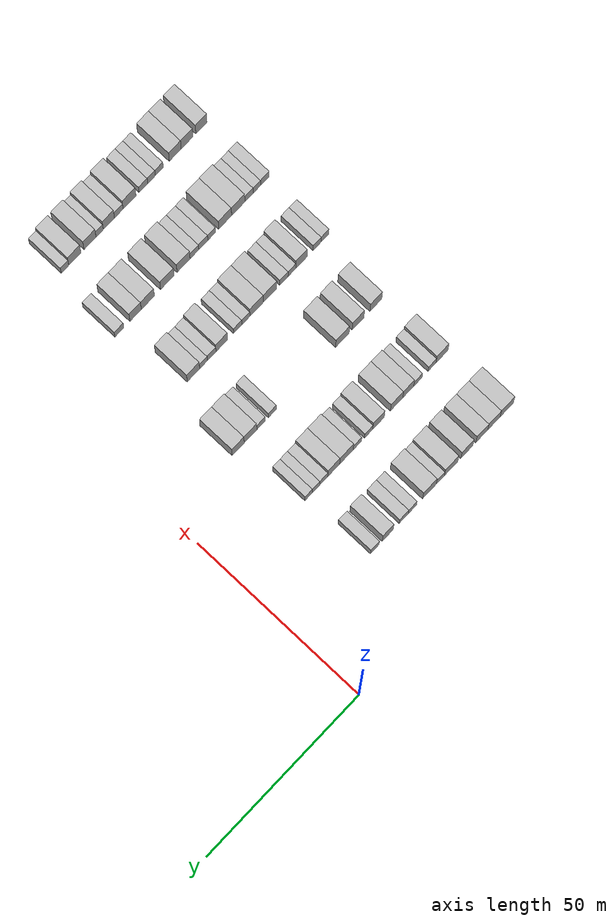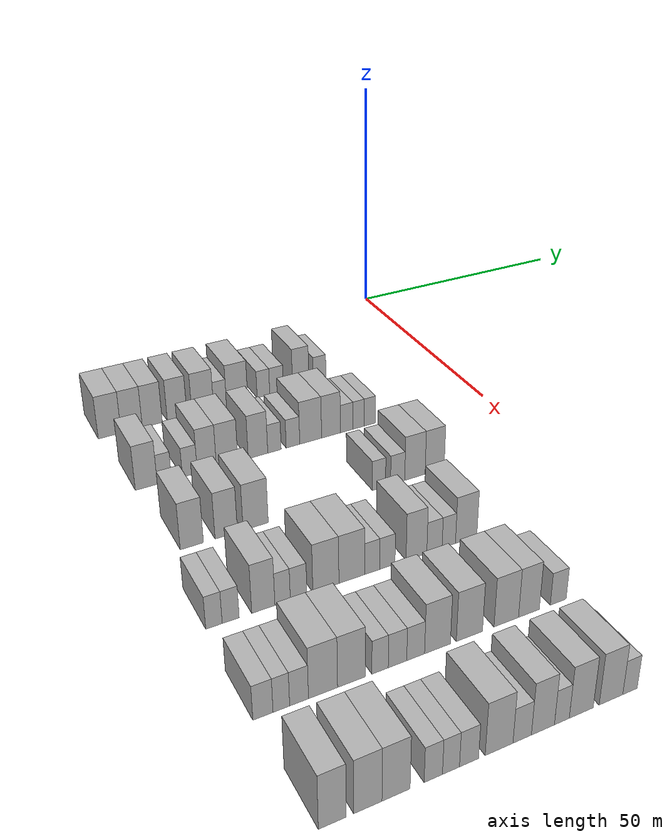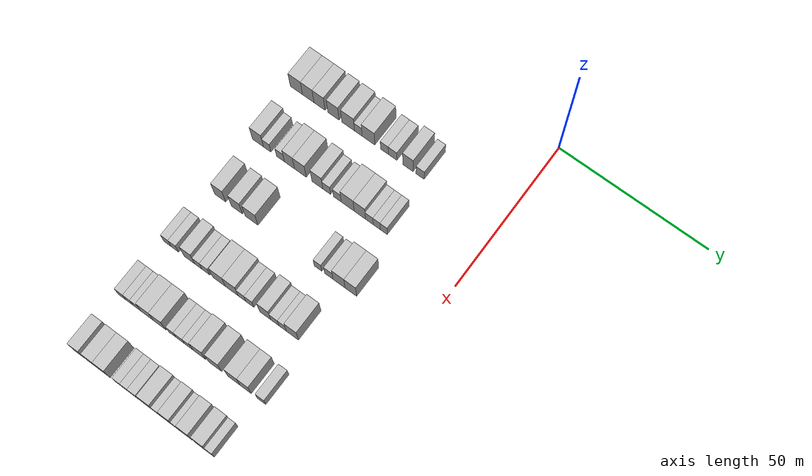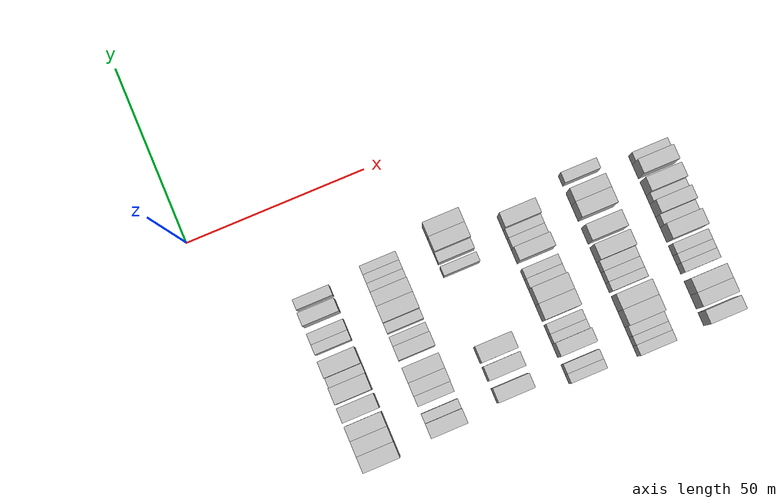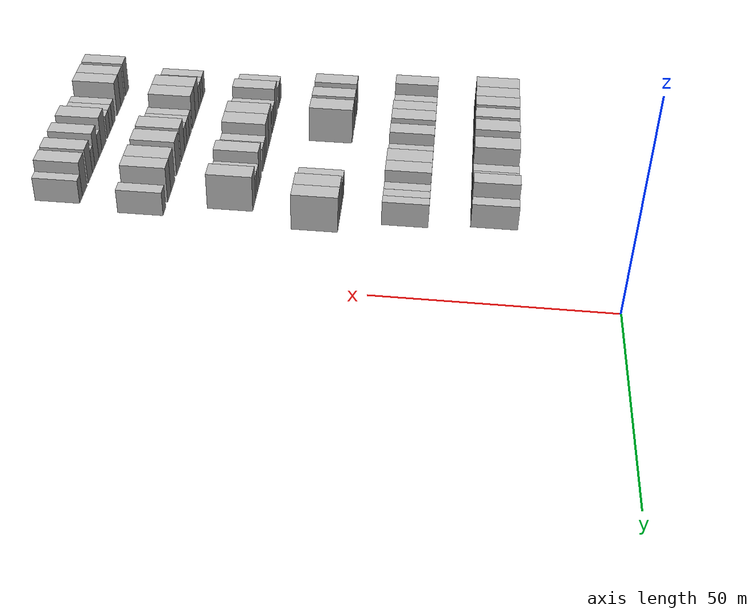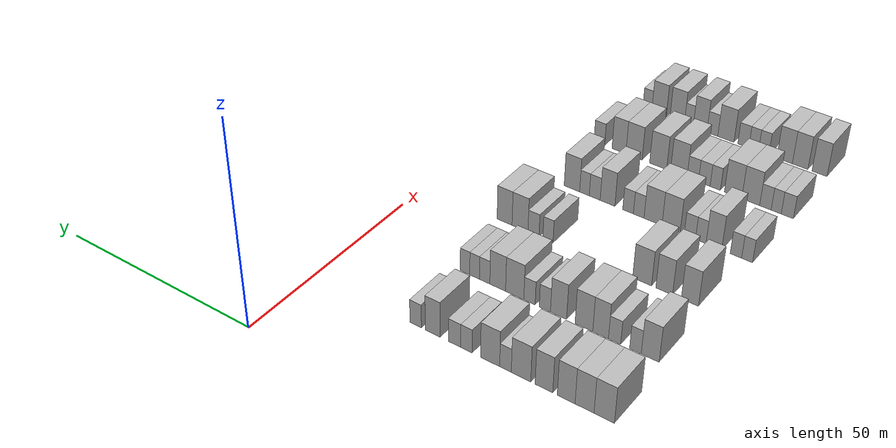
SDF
<sdf version="1.6">
 <world name="default">
  <model name="building_70">
   <static>1</static>
   <pose>25.0000 -69.9888 0 0.000000 0.000000 0.000000</pose>
   <link name="link">
    <pose>0 0 4.50 0 0 0</pose>
    <collision name="collision"><geometry><box><size>10.0000 4.3776 9.0000</size></box></geometry></collision>
    <visual name="visual">
     <cast_shadows>0</cast_shadows>
     <geometry><box><size>10.0000 4.3776 9.0000</size></box></geometry>
     <material>
      <script>
       <uri>model://HANNAS_wall/materials/scripts</uri>
       <uri>model://HANNAS_wall/materials/textures</uri>
       <name>vrc/HANNAS_wall</name>
      </script>
     </material>
    </visual>
   </link>
  </model>
  <model name="building_71">
   <static>1</static>
   <pose>25.0000 -65.7363 0 0.000000 0.000000 0.000000</pose>
   <link name="link">
    <pose>0 0 4.50 0 0 0</pose>
    <collision name="collision"><geometry><box><size>10.0000 4.1273 9.0000</size></box></geometry></collision>
    <visual name="visual">
     <cast_shadows>0</cast_shadows>
     <geometry><box><size>10.0000 4.1273 9.0000</size></box></geometry>
     <material>
      <script>
       <uri>model://HANNAS_wall/materials/scripts</uri>
       <uri>model://HANNAS_wall/materials/textures</uri>
       <name>vrc/HANNAS_wall</name>
      </script>
     </material>
    </visual>
   </link>
  </model>
  <model name="building_72">
   <static>1</static>
   <pose>25.0000 -61.7075 0 0.000000 0.000000 0.000000</pose>
   <link name="link">
    <pose>0 0 4.50 0 0 0</pose>
    <collision name="collision"><geometry><box><size>10.0000 3.9303 9.0000</size></box></geometry></collision>
    <visual name="visual">
     <cast_shadows>0</cast_shadows>
     <geometry><box><size>10.0000 3.9303 9.0000</size></box></geometry>
     <material>
      <script>
       <uri>model://HANNAS_wall/materials/scripts</uri>
       <uri>model://HANNAS_wall/materials/textures</uri>
       <name>vrc/HANNAS_wall</name>
      </script>
     </material>
    </visual>
   </link>
  </model>
  <model name="building_73">
   <static>1</static>
   <pose>25.0000 -56.7622 0 0.000000 0.000000 0.000000</pose>
   <link name="link">
    <pose>0 0 4.50 0 0 0</pose>
    <collision name="collision"><geometry><box><size>10.0000 3.9604 9.0000</size></box></geometry></collision>
    <visual name="visual">
     <cast_shadows>0</cast_shadows>
     <geometry><box><size>10.0000 3.9604 9.0000</size></box></geometry>
     <material>
      <script>
       <uri>model://HANNAS_wall/materials/scripts</uri>
       <uri>model://HANNAS_wall/materials/textures</uri>
       <name>vrc/HANNAS_wall</name>
      </script>
     </material>
    </visual>
   </link>
  </model>
  <model name="building_74">
   <static>1</static>
   <pose>25.0000 -51.5574 0 0.000000 0.000000 0.000000</pose>
   <link name="link">
    <pose>0 0 4.50 0 0 0</pose>
    <collision name="collision"><geometry><box><size>10.0000 4.4492 9.0000</size></box></geometry></collision>
    <visual name="visual">
     <cast_shadows>0</cast_shadows>
     <geometry><box><size>10.0000 4.4492 9.0000</size></box></geometry>
     <material>
      <script>
       <uri>model://HANNAS_wall/materials/scripts</uri>
       <uri>model://HANNAS_wall/materials/textures</uri>
       <name>vrc/HANNAS_wall</name>
      </script>
     </material>
    </visual>
   </link>
  </model>
  <model name="building_75">
   <static>1</static>
   <pose>25.0000 -47.9876 0 0.000000 0.000000 0.000000</pose>
   <link name="link">
    <pose>0 0 3.00 0 0 0</pose>
    <collision name="collision"><geometry><box><size>10.0000 2.6904 6.0000</size></box></geometry></collision>
    <visual name="visual">
     <cast_shadows>0</cast_shadows>
     <geometry><box><size>10.0000 2.6904 6.0000</size></box></geometry>
     <material>
      <script>
       <uri>model://HANNAS_wall/materials/scripts</uri>
       <uri>model://HANNAS_wall/materials/textures</uri>
       <name>vrc/HANNAS_wall</name>
      </script>
     </material>
    </visual>
   </link>
  </model>
  <model name="building_76">
   <static>1</static>
   <pose>25.0000 -44.4058 0 0.000000 0.000000 0.000000</pose>
   <link name="link">
    <pose>0 0 4.50 0 0 0</pose>
    <collision name="collision"><geometry><box><size>10.0000 4.4731 9.0000</size></box></geometry></collision>
    <visual name="visual">
     <cast_shadows>0</cast_shadows>
     <geometry><box><size>10.0000 4.4731 9.0000</size></box></geometry>
     <material>
      <script>
       <uri>model://HANNAS_wall/materials/scripts</uri>
       <uri>model://HANNAS_wall/materials/textures</uri>
       <name>vrc/HANNAS_wall</name>
      </script>
     </material>
    </visual>
   </link>
  </model>
  <model name="building_77">
   <static>1</static>
   <pose>25.0000 -38.8100 0 0.000000 0.000000 0.000000</pose>
   <link name="link">
    <pose>0 0 3.00 0 0 0</pose>
    <collision name="collision"><geometry><box><size>10.0000 2.7185 6.0000</size></box></geometry></collision>
    <visual name="visual">
     <cast_shadows>0</cast_shadows>
     <geometry><box><size>10.0000 2.7185 6.0000</size></box></geometry>
     <material>
      <script>
       <uri>model://HANNAS_wall/materials/scripts</uri>
       <uri>model://HANNAS_wall/materials/textures</uri>
       <name>vrc/HANNAS_wall</name>
      </script>
     </material>
    </visual>
   </link>
  </model>
  <model name="building_78">
   <static>1</static>
   <pose>25.0000 -35.9516 0 0.000000 0.000000 0.000000</pose>
   <link name="link">
    <pose>0 0 3.00 0 0 0</pose>
    <collision name="collision"><geometry><box><size>10.0000 2.9984 6.0000</size></box></geometry></collision>
    <visual name="visual">
     <cast_shadows>0</cast_shadows>
     <geometry><box><size>10.0000 2.9984 6.0000</size></box></geometry>
     <material>
      <script>
       <uri>model://HANNAS_wall/materials/scripts</uri>
       <uri>model://HANNAS_wall/materials/textures</uri>
       <name>vrc/HANNAS_wall</name>
      </script>
     </material>
    </visual>
   </link>
  </model>
  <model name="building_79">
   <static>1</static>
   <pose>25.0000 -30.6414 0 0.000000 0.000000 0.000000</pose>
   <link name="link">
    <pose>0 0 4.50 0 0 0</pose>
    <collision name="collision"><geometry><box><size>10.0000 3.6219 9.0000</size></box></geometry></collision>
    <visual name="visual">
     <cast_shadows>0</cast_shadows>
     <geometry><box><size>10.0000 3.6219 9.0000</size></box></geometry>
     <material>
      <script>
       <uri>model://HANNAS_wall/materials/scripts</uri>
       <uri>model://HANNAS_wall/materials/textures</uri>
       <name>vrc/HANNAS_wall</name>
      </script>
     </material>
    </visual>
   </link>
  </model>
  <model name="building_80">
   <static>1</static>
   <pose>25.0000 -26.4123 0 0.000000 0.000000 0.000000</pose>
   <link name="link">
    <pose>0 0 3.00 0 0 0</pose>
    <collision name="collision"><geometry><box><size>10.0000 2.8364 6.0000</size></box></geometry></collision>
    <visual name="visual">
     <cast_shadows>0</cast_shadows>
     <geometry><box><size>10.0000 2.8364 6.0000</size></box></geometry>
     <material>
      <script>
       <uri>model://HANNAS_wall/materials/scripts</uri>
       <uri>model://HANNAS_wall/materials/textures</uri>
       <name>vrc/HANNAS_wall</name>
      </script>
     </material>
    </visual>
   </link>
  </model>
  <model name="building_248">
   <static>1</static>
   <pose>44.0000 -68.8978 0 0.000000 0.000000 0.000000</pose>
   <link name="link">
    <pose>0 0 4.50 0 0 0</pose>
    <collision name="collision"><geometry><box><size>10.0000 3.9660 9.0000</size></box></geometry></collision>
    <visual name="visual">
     <cast_shadows>0</cast_shadows>
     <geometry><box><size>10.0000 3.9660 9.0000</size></box></geometry>
     <material>
      <script>
       <uri>model://HANNAS_wall/materials/scripts</uri>
       <uri>model://HANNAS_wall/materials/textures</uri>
       <name>vrc/HANNAS_wall</name>
      </script>
     </material>
    </visual>
   </link>
  </model>
  <model name="building_249">
   <static>1</static>
   <pose>44.0000 -65.6132 0 0.000000 0.000000 0.000000</pose>
   <link name="link">
    <pose>0 0 3.00 0 0 0</pose>
    <collision name="collision"><geometry><box><size>10.0000 2.6032 6.0000</size></box></geometry></collision>
    <visual name="visual">
     <cast_shadows>0</cast_shadows>
     <geometry><box><size>10.0000 2.6032 6.0000</size></box></geometry>
     <material>
      <script>
       <uri>model://HANNAS_wall/materials/scripts</uri>
       <uri>model://HANNAS_wall/materials/textures</uri>
       <name>vrc/HANNAS_wall</name>
      </script>
     </material>
    </visual>
   </link>
  </model>
  <model name="building_250">
   <static>1</static>
   <pose>44.0000 -60.9250 0 0.000000 0.000000 0.000000</pose>
   <link name="link">
    <pose>0 0 3.00 0 0 0</pose>
    <collision name="collision"><geometry><box><size>10.0000 2.7731 6.0000</size></box></geometry></collision>
    <visual name="visual">
     <cast_shadows>0</cast_shadows>
     <geometry><box><size>10.0000 2.7731 6.0000</size></box></geometry>
     <material>
      <script>
       <uri>model://HANNAS_wall/materials/scripts</uri>
       <uri>model://HANNAS_wall/materials/textures</uri>
       <name>vrc/HANNAS_wall</name>
      </script>
     </material>
    </visual>
   </link>
  </model>
  <model name="building_251">
   <static>1</static>
   <pose>44.0000 -57.7348 0 0.000000 0.000000 0.000000</pose>
   <link name="link">
    <pose>0 0 4.50 0 0 0</pose>
    <collision name="collision"><geometry><box><size>10.0000 3.6072 9.0000</size></box></geometry></collision>
    <visual name="visual">
     <cast_shadows>0</cast_shadows>
     <geometry><box><size>10.0000 3.6072 9.0000</size></box></geometry>
     <material>
      <script>
       <uri>model://HANNAS_wall/materials/scripts</uri>
       <uri>model://HANNAS_wall/materials/textures</uri>
       <name>vrc/HANNAS_wall</name>
      </script>
     </material>
    </visual>
   </link>
  </model>
  <model name="building_252">
   <static>1</static>
   <pose>44.0000 -53.8729 0 0.000000 0.000000 0.000000</pose>
   <link name="link">
    <pose>0 0 4.50 0 0 0</pose>
    <collision name="collision"><geometry><box><size>10.0000 4.1167 9.0000</size></box></geometry></collision>
    <visual name="visual">
     <cast_shadows>0</cast_shadows>
     <geometry><box><size>10.0000 4.1167 9.0000</size></box></geometry>
     <material>
      <script>
       <uri>model://HANNAS_wall/materials/scripts</uri>
       <uri>model://HANNAS_wall/materials/textures</uri>
       <name>vrc/HANNAS_wall</name>
      </script>
     </material>
    </visual>
   </link>
  </model>
  <model name="building_253">
   <static>1</static>
   <pose>44.0000 -47.9007 0 0.000000 0.000000 0.000000</pose>
   <link name="link">
    <pose>0 0 4.50 0 0 0</pose>
    <collision name="collision"><geometry><box><size>10.0000 3.8277 9.0000</size></box></geometry></collision>
    <visual name="visual">
     <cast_shadows>0</cast_shadows>
     <geometry><box><size>10.0000 3.8277 9.0000</size></box></geometry>
     <material>
      <script>
       <uri>model://HANNAS_wall/materials/scripts</uri>
       <uri>model://HANNAS_wall/materials/textures</uri>
       <name>vrc/HANNAS_wall</name>
      </script>
     </material>
    </visual>
   </link>
  </model>
  <model name="building_254">
   <static>1</static>
   <pose>44.0000 -44.6475 0 0.000000 0.000000 0.000000</pose>
   <link name="link">
    <pose>0 0 3.00 0 0 0</pose>
    <collision name="collision"><geometry><box><size>10.0000 2.6787 6.0000</size></box></geometry></collision>
    <visual name="visual">
     <cast_shadows>0</cast_shadows>
     <geometry><box><size>10.0000 2.6787 6.0000</size></box></geometry>
     <material>
      <script>
       <uri>model://HANNAS_wall/materials/scripts</uri>
       <uri>model://HANNAS_wall/materials/textures</uri>
       <name>vrc/HANNAS_wall</name>
      </script>
     </material>
    </visual>
   </link>
  </model>
  <model name="building_255">
   <static>1</static>
   <pose>44.0000 -40.9359 0 0.000000 0.000000 0.000000</pose>
   <link name="link">
    <pose>0 0 3.00 0 0 0</pose>
    <collision name="collision"><geometry><box><size>10.0000 2.7445 6.0000</size></box></geometry></collision>
    <visual name="visual">
     <cast_shadows>0</cast_shadows>
     <geometry><box><size>10.0000 2.7445 6.0000</size></box></geometry>
     <material>
      <script>
       <uri>model://HANNAS_wall/materials/scripts</uri>
       <uri>model://HANNAS_wall/materials/textures</uri>
       <name>vrc/HANNAS_wall</name>
      </script>
     </material>
    </visual>
   </link>
  </model>
  <model name="building_256">
   <static>1</static>
   <pose>44.0000 -37.3210 0 0.000000 0.000000 0.000000</pose>
   <link name="link">
    <pose>0 0 4.50 0 0 0</pose>
    <collision name="collision"><geometry><box><size>10.0000 4.4855 9.0000</size></box></geometry></collision>
    <visual name="visual">
     <cast_shadows>0</cast_shadows>
     <geometry><box><size>10.0000 4.4855 9.0000</size></box></geometry>
     <material>
      <script>
       <uri>model://HANNAS_wall/materials/scripts</uri>
       <uri>model://HANNAS_wall/materials/textures</uri>
       <name>vrc/HANNAS_wall</name>
      </script>
     </material>
    </visual>
   </link>
  </model>
  <model name="building_257">
   <static>1</static>
   <pose>44.0000 -33.1136 0 0.000000 0.000000 0.000000</pose>
   <link name="link">
    <pose>0 0 4.50 0 0 0</pose>
    <collision name="collision"><geometry><box><size>10.0000 3.9292 9.0000</size></box></geometry></collision>
    <visual name="visual">
     <cast_shadows>0</cast_shadows>
     <geometry><box><size>10.0000 3.9292 9.0000</size></box></geometry>
     <material>
      <script>
       <uri>model://HANNAS_wall/materials/scripts</uri>
       <uri>model://HANNAS_wall/materials/textures</uri>
       <name>vrc/HANNAS_wall</name>
      </script>
     </material>
    </visual>
   </link>
  </model>
  <model name="building_258">
   <static>1</static>
   <pose>44.0000 -29.8338 0 0.000000 0.000000 0.000000</pose>
   <link name="link">
    <pose>0 0 3.00 0 0 0</pose>
    <collision name="collision"><geometry><box><size>10.0000 2.6304 6.0000</size></box></geometry></collision>
    <visual name="visual">
     <cast_shadows>0</cast_shadows>
     <geometry><box><size>10.0000 2.6304 6.0000</size></box></geometry>
     <material>
      <script>
       <uri>model://HANNAS_wall/materials/scripts</uri>
       <uri>model://HANNAS_wall/materials/textures</uri>
       <name>vrc/HANNAS_wall</name>
      </script>
     </material>
    </visual>
   </link>
  </model>
  <model name="building_259">
   <static>1</static>
   <pose>44.0000 -27.2971 0 0.000000 0.000000 0.000000</pose>
   <link name="link">
    <pose>0 0 3.00 0 0 0</pose>
    <collision name="collision"><geometry><box><size>10.0000 2.4429 6.0000</size></box></geometry></collision>
    <visual name="visual">
     <cast_shadows>0</cast_shadows>
     <geometry><box><size>10.0000 2.4429 6.0000</size></box></geometry>
     <material>
      <script>
       <uri>model://HANNAS_wall/materials/scripts</uri>
       <uri>model://HANNAS_wall/materials/textures</uri>
       <name>vrc/HANNAS_wall</name>
      </script>
     </material>
    </visual>
   </link>
  </model>
  <model name="building_260">
   <static>1</static>
   <pose>44.0000 -24.8692 0 0.000000 0.000000 0.000000</pose>
   <link name="link">
    <pose>0 0 3.00 0 0 0</pose>
    <collision name="collision"><geometry><box><size>10.0000 2.4128 6.0000</size></box></geometry></collision>
    <visual name="visual">
     <cast_shadows>0</cast_shadows>
     <geometry><box><size>10.0000 2.4128 6.0000</size></box></geometry>
     <material>
      <script>
       <uri>model://HANNAS_wall/materials/scripts</uri>
       <uri>model://HANNAS_wall/materials/textures</uri>
       <name>vrc/HANNAS_wall</name>
      </script>
     </material>
    </visual>
   </link>
  </model>
  <model name="building_428">
   <static>1</static>
   <pose>63.0000 -67.3273 0 0.000000 0.000000 0.000000</pose>
   <link name="link">
    <pose>0 0 4.50 0 0 0</pose>
    <collision name="collision"><geometry><box><size>10.0000 3.9316 9.0000</size></box></geometry></collision>
    <visual name="visual">
     <cast_shadows>0</cast_shadows>
     <geometry><box><size>10.0000 3.9316 9.0000</size></box></geometry>
     <material>
      <script>
       <uri>model://HANNAS_wall/materials/scripts</uri>
       <uri>model://HANNAS_wall/materials/textures</uri>
       <name>vrc/HANNAS_wall</name>
      </script>
     </material>
    </visual>
   </link>
  </model>
  <model name="building_429">
   <static>1</static>
   <pose>63.0000 -61.4141 0 0.000000 0.000000 0.000000</pose>
   <link name="link">
    <pose>0 0 4.50 0 0 0</pose>
    <collision name="collision"><geometry><box><size>10.0000 3.8948 9.0000</size></box></geometry></collision>
    <visual name="visual">
     <cast_shadows>0</cast_shadows>
     <geometry><box><size>10.0000 3.8948 9.0000</size></box></geometry>
     <material>
      <script>
       <uri>model://HANNAS_wall/materials/scripts</uri>
       <uri>model://HANNAS_wall/materials/textures</uri>
       <name>vrc/HANNAS_wall</name>
      </script>
     </material>
    </visual>
   </link>
  </model>
  <model name="building_430">
   <static>1</static>
   <pose>63.0000 -56.2300 0 0.000000 0.000000 0.000000</pose>
   <link name="link">
    <pose>0 0 4.50 0 0 0</pose>
    <collision name="collision"><geometry><box><size>10.0000 4.4734 9.0000</size></box></geometry></collision>
    <visual name="visual">
     <cast_shadows>0</cast_shadows>
     <geometry><box><size>10.0000 4.4734 9.0000</size></box></geometry>
     <material>
      <script>
       <uri>model://HANNAS_wall/materials/scripts</uri>
       <uri>model://HANNAS_wall/materials/textures</uri>
       <name>vrc/HANNAS_wall</name>
      </script>
     </material>
    </visual>
   </link>
  </model>
  <model name="building_431">
   <static>1</static>
   <pose>63.0000 -33.1133 0 0.000000 0.000000 0.000000</pose>
   <link name="link">
    <pose>0 0 3.00 0 0 0</pose>
    <collision name="collision"><geometry><box><size>10.0000 2.5866 6.0000</size></box></geometry></collision>
    <visual name="visual">
     <cast_shadows>0</cast_shadows>
     <geometry><box><size>10.0000 2.5866 6.0000</size></box></geometry>
     <material>
      <script>
       <uri>model://HANNAS_wall/materials/scripts</uri>
       <uri>model://HANNAS_wall/materials/textures</uri>
       <name>vrc/HANNAS_wall</name>
      </script>
     </material>
    </visual>
   </link>
  </model>
  <model name="building_432">
   <static>1</static>
   <pose>63.0000 -29.3968 0 0.000000 0.000000 0.000000</pose>
   <link name="link">
    <pose>0 0 3.00 0 0 0</pose>
    <collision name="collision"><geometry><box><size>10.0000 2.8464 6.0000</size></box></geometry></collision>
    <visual name="visual">
     <cast_shadows>0</cast_shadows>
     <geometry><box><size>10.0000 2.8464 6.0000</size></box></geometry>
     <material>
      <script>
       <uri>model://HANNAS_wall/materials/scripts</uri>
       <uri>model://HANNAS_wall/materials/textures</uri>
       <name>vrc/HANNAS_wall</name>
      </script>
     </material>
    </visual>
   </link>
  </model>
  <model name="building_433">
   <static>1</static>
   <pose>63.0000 -25.9056 0 0.000000 0.000000 0.000000</pose>
   <link name="link">
    <pose>0 0 4.50 0 0 0</pose>
    <collision name="collision"><geometry><box><size>10.0000 4.1361 9.0000</size></box></geometry></collision>
    <visual name="visual">
     <cast_shadows>0</cast_shadows>
     <geometry><box><size>10.0000 4.1361 9.0000</size></box></geometry>
     <material>
      <script>
       <uri>model://HANNAS_wall/materials/scripts</uri>
       <uri>model://HANNAS_wall/materials/textures</uri>
       <name>vrc/HANNAS_wall</name>
      </script>
     </material>
    </visual>
   </link>
  </model>
  <model name="building_434">
   <static>1</static>
   <pose>63.0000 -21.8682 0 0.000000 0.000000 0.000000</pose>
   <link name="link">
    <pose>0 0 4.50 0 0 0</pose>
    <collision name="collision"><geometry><box><size>10.0000 3.9386 9.0000</size></box></geometry></collision>
    <visual name="visual">
     <cast_shadows>0</cast_shadows>
     <geometry><box><size>10.0000 3.9386 9.0000</size></box></geometry>
     <material>
      <script>
       <uri>model://HANNAS_wall/materials/scripts</uri>
       <uri>model://HANNAS_wall/materials/textures</uri>
       <name>vrc/HANNAS_wall</name>
      </script>
     </material>
    </visual>
   </link>
  </model>
  <model name="building_593">
   <static>1</static>
   <pose>82.0000 -70.6965 0 0.000000 0.000000 0.000000</pose>
   <link name="link">
    <pose>0 0 3.00 0 0 0</pose>
    <collision name="collision"><geometry><box><size>10.0000 2.5584 6.0000</size></box></geometry></collision>
    <visual name="visual">
     <cast_shadows>0</cast_shadows>
     <geometry><box><size>10.0000 2.5584 6.0000</size></box></geometry>
     <material>
      <script>
       <uri>model://HANNAS_wall/materials/scripts</uri>
       <uri>model://HANNAS_wall/materials/textures</uri>
       <name>vrc/HANNAS_wall</name>
      </script>
     </material>
    </visual>
   </link>
  </model>
  <model name="building_594">
   <static>1</static>
   <pose>82.0000 -68.0846 0 0.000000 0.000000 0.000000</pose>
   <link name="link">
    <pose>0 0 3.00 0 0 0</pose>
    <collision name="collision"><geometry><box><size>10.0000 2.6655 6.0000</size></box></geometry></collision>
    <visual name="visual">
     <cast_shadows>0</cast_shadows>
     <geometry><box><size>10.0000 2.6655 6.0000</size></box></geometry>
     <material>
      <script>
       <uri>model://HANNAS_wall/materials/scripts</uri>
       <uri>model://HANNAS_wall/materials/textures</uri>
       <name>vrc/HANNAS_wall</name>
      </script>
     </material>
    </visual>
   </link>
  </model>
  <model name="building_595">
   <static>1</static>
   <pose>82.0000 -62.8840 0 0.000000 0.000000 0.000000</pose>
   <link name="link">
    <pose>0 0 4.50 0 0 0</pose>
    <collision name="collision"><geometry><box><size>10.0000 3.7358 9.0000</size></box></geometry></collision>
    <visual name="visual">
     <cast_shadows>0</cast_shadows>
     <geometry><box><size>10.0000 3.7358 9.0000</size></box></geometry>
     <material>
      <script>
       <uri>model://HANNAS_wall/materials/scripts</uri>
       <uri>model://HANNAS_wall/materials/textures</uri>
       <name>vrc/HANNAS_wall</name>
      </script>
     </material>
    </visual>
   </link>
  </model>
  <model name="building_596">
   <static>1</static>
   <pose>82.0000 -59.7561 0 0.000000 0.000000 0.000000</pose>
   <link name="link">
    <pose>0 0 3.00 0 0 0</pose>
    <collision name="collision"><geometry><box><size>10.0000 2.5199 6.0000</size></box></geometry></collision>
    <visual name="visual">
     <cast_shadows>0</cast_shadows>
     <geometry><box><size>10.0000 2.5199 6.0000</size></box></geometry>
     <material>
      <script>
       <uri>model://HANNAS_wall/materials/scripts</uri>
       <uri>model://HANNAS_wall/materials/textures</uri>
       <name>vrc/HANNAS_wall</name>
      </script>
     </material>
    </visual>
   </link>
  </model>
  <model name="building_597">
   <static>1</static>
   <pose>82.0000 -57.1208 0 0.000000 0.000000 0.000000</pose>
   <link name="link">
    <pose>0 0 3.00 0 0 0</pose>
    <collision name="collision"><geometry><box><size>10.0000 2.7508 6.0000</size></box></geometry></collision>
    <visual name="visual">
     <cast_shadows>0</cast_shadows>
     <geometry><box><size>10.0000 2.7508 6.0000</size></box></geometry>
     <material>
      <script>
       <uri>model://HANNAS_wall/materials/scripts</uri>
       <uri>model://HANNAS_wall/materials/textures</uri>
       <name>vrc/HANNAS_wall</name>
      </script>
     </material>
    </visual>
   </link>
  </model>
  <model name="building_598">
   <static>1</static>
   <pose>82.0000 -52.5297 0 0.000000 0.000000 0.000000</pose>
   <link name="link">
    <pose>0 0 4.50 0 0 0</pose>
    <collision name="collision"><geometry><box><size>10.0000 4.4313 9.0000</size></box></geometry></collision>
    <visual name="visual">
     <cast_shadows>0</cast_shadows>
     <geometry><box><size>10.0000 4.4313 9.0000</size></box></geometry>
     <material>
      <script>
       <uri>model://HANNAS_wall/materials/scripts</uri>
       <uri>model://HANNAS_wall/materials/textures</uri>
       <name>vrc/HANNAS_wall</name>
      </script>
     </material>
    </visual>
   </link>
  </model>
  <model name="building_599">
   <static>1</static>
   <pose>82.0000 -48.0800 0 0.000000 0.000000 0.000000</pose>
   <link name="link">
    <pose>0 0 4.50 0 0 0</pose>
    <collision name="collision"><geometry><box><size>10.0000 4.4681 9.0000</size></box></geometry></collision>
    <visual name="visual">
     <cast_shadows>0</cast_shadows>
     <geometry><box><size>10.0000 4.4681 9.0000</size></box></geometry>
     <material>
      <script>
       <uri>model://HANNAS_wall/materials/scripts</uri>
       <uri>model://HANNAS_wall/materials/textures</uri>
       <name>vrc/HANNAS_wall</name>
      </script>
     </material>
    </visual>
   </link>
  </model>
  <model name="building_600">
   <static>1</static>
   <pose>82.0000 -44.5097 0 0.000000 0.000000 0.000000</pose>
   <link name="link">
    <pose>0 0 3.00 0 0 0</pose>
    <collision name="collision"><geometry><box><size>10.0000 2.6726 6.0000</size></box></geometry></collision>
    <visual name="visual">
     <cast_shadows>0</cast_shadows>
     <geometry><box><size>10.0000 2.6726 6.0000</size></box></geometry>
     <material>
      <script>
       <uri>model://HANNAS_wall/materials/scripts</uri>
       <uri>model://HANNAS_wall/materials/textures</uri>
       <name>vrc/HANNAS_wall</name>
      </script>
     </material>
    </visual>
   </link>
  </model>
  <model name="building_601">
   <static>1</static>
   <pose>82.0000 -41.8176 0 0.000000 0.000000 0.000000</pose>
   <link name="link">
    <pose>0 0 3.00 0 0 0</pose>
    <collision name="collision"><geometry><box><size>10.0000 2.7115 6.0000</size></box></geometry></collision>
    <visual name="visual">
     <cast_shadows>0</cast_shadows>
     <geometry><box><size>10.0000 2.7115 6.0000</size></box></geometry>
     <material>
      <script>
       <uri>model://HANNAS_wall/materials/scripts</uri>
       <uri>model://HANNAS_wall/materials/textures</uri>
       <name>vrc/HANNAS_wall</name>
      </script>
     </material>
    </visual>
   </link>
  </model>
  <model name="building_602">
   <static>1</static>
   <pose>82.0000 -36.5616 0 0.000000 0.000000 0.000000</pose>
   <link name="link">
    <pose>0 0 4.50 0 0 0</pose>
    <collision name="collision"><geometry><box><size>10.0000 3.8004 9.0000</size></box></geometry></collision>
    <visual name="visual">
     <cast_shadows>0</cast_shadows>
     <geometry><box><size>10.0000 3.8004 9.0000</size></box></geometry>
     <material>
      <script>
       <uri>model://HANNAS_wall/materials/scripts</uri>
       <uri>model://HANNAS_wall/materials/textures</uri>
       <name>vrc/HANNAS_wall</name>
      </script>
     </material>
    </visual>
   </link>
  </model>
  <model name="building_603">
   <static>1</static>
   <pose>82.0000 -33.2429 0 0.000000 0.000000 0.000000</pose>
   <link name="link">
    <pose>0 0 3.00 0 0 0</pose>
    <collision name="collision"><geometry><box><size>10.0000 2.8372 6.0000</size></box></geometry></collision>
    <visual name="visual">
     <cast_shadows>0</cast_shadows>
     <geometry><box><size>10.0000 2.8372 6.0000</size></box></geometry>
     <material>
      <script>
       <uri>model://HANNAS_wall/materials/scripts</uri>
       <uri>model://HANNAS_wall/materials/textures</uri>
       <name>vrc/HANNAS_wall</name>
      </script>
     </material>
    </visual>
   </link>
  </model>
  <model name="building_604">
   <static>1</static>
   <pose>82.0000 -30.5596 0 0.000000 0.000000 0.000000</pose>
   <link name="link">
    <pose>0 0 3.00 0 0 0</pose>
    <collision name="collision"><geometry><box><size>10.0000 2.5294 6.0000</size></box></geometry></collision>
    <visual name="visual">
     <cast_shadows>0</cast_shadows>
     <geometry><box><size>10.0000 2.5294 6.0000</size></box></geometry>
     <material>
      <script>
       <uri>model://HANNAS_wall/materials/scripts</uri>
       <uri>model://HANNAS_wall/materials/textures</uri>
       <name>vrc/HANNAS_wall</name>
      </script>
     </material>
    </visual>
   </link>
  </model>
  <model name="building_605">
   <static>1</static>
   <pose>82.0000 -27.2499 0 0.000000 0.000000 0.000000</pose>
   <link name="link">
    <pose>0 0 4.50 0 0 0</pose>
    <collision name="collision"><geometry><box><size>10.0000 4.0899 9.0000</size></box></geometry></collision>
    <visual name="visual">
     <cast_shadows>0</cast_shadows>
     <geometry><box><size>10.0000 4.0899 9.0000</size></box></geometry>
     <material>
      <script>
       <uri>model://HANNAS_wall/materials/scripts</uri>
       <uri>model://HANNAS_wall/materials/textures</uri>
       <name>vrc/HANNAS_wall</name>
      </script>
     </material>
    </visual>
   </link>
  </model>
  <model name="building_777">
   <static>1</static>
   <pose>101.0000 -70.9666 0 0.000000 0.000000 0.000000</pose>
   <link name="link">
    <pose>0 0 3.00 0 0 0</pose>
    <collision name="collision"><geometry><box><size>10.0000 2.8955 6.0000</size></box></geometry></collision>
    <visual name="visual">
     <cast_shadows>0</cast_shadows>
     <geometry><box><size>10.0000 2.8955 6.0000</size></box></geometry>
     <material>
      <script>
       <uri>model://HANNAS_wall/materials/scripts</uri>
       <uri>model://HANNAS_wall/materials/textures</uri>
       <name>vrc/HANNAS_wall</name>
      </script>
     </material>
    </visual>
   </link>
  </model>
  <model name="building_778">
   <static>1</static>
   <pose>101.0000 -68.3120 0 0.000000 0.000000 0.000000</pose>
   <link name="link">
    <pose>0 0 3.00 0 0 0</pose>
    <collision name="collision"><geometry><box><size>10.0000 2.4139 6.0000</size></box></geometry></collision>
    <visual name="visual">
     <cast_shadows>0</cast_shadows>
     <geometry><box><size>10.0000 2.4139 6.0000</size></box></geometry>
     <material>
      <script>
       <uri>model://HANNAS_wall/materials/scripts</uri>
       <uri>model://HANNAS_wall/materials/textures</uri>
       <name>vrc/HANNAS_wall</name>
      </script>
     </material>
    </visual>
   </link>
  </model>
  <model name="building_779">
   <static>1</static>
   <pose>101.0000 -65.7157 0 0.000000 0.000000 0.000000</pose>
   <link name="link">
    <pose>0 0 3.00 0 0 0</pose>
    <collision name="collision"><geometry><box><size>10.0000 2.7787 6.0000</size></box></geometry></collision>
    <visual name="visual">
     <cast_shadows>0</cast_shadows>
     <geometry><box><size>10.0000 2.7787 6.0000</size></box></geometry>
     <material>
      <script>
       <uri>model://HANNAS_wall/materials/scripts</uri>
       <uri>model://HANNAS_wall/materials/textures</uri>
       <name>vrc/HANNAS_wall</name>
      </script>
     </material>
    </visual>
   </link>
  </model>
  <model name="building_780">
   <static>1</static>
   <pose>101.0000 -62.1397 0 0.000000 0.000000 0.000000</pose>
   <link name="link">
    <pose>0 0 4.50 0 0 0</pose>
    <collision name="collision"><geometry><box><size>10.0000 4.3733 9.0000</size></box></geometry></collision>
    <visual name="visual">
     <cast_shadows>0</cast_shadows>
     <geometry><box><size>10.0000 4.3733 9.0000</size></box></geometry>
     <material>
      <script>
       <uri>model://HANNAS_wall/materials/scripts</uri>
       <uri>model://HANNAS_wall/materials/textures</uri>
       <name>vrc/HANNAS_wall</name>
      </script>
     </material>
    </visual>
   </link>
  </model>
  <model name="building_781">
   <static>1</static>
   <pose>101.0000 -57.8033 0 0.000000 0.000000 0.000000</pose>
   <link name="link">
    <pose>0 0 4.50 0 0 0</pose>
    <collision name="collision"><geometry><box><size>10.0000 4.2996 9.0000</size></box></geometry></collision>
    <visual name="visual">
     <cast_shadows>0</cast_shadows>
     <geometry><box><size>10.0000 4.2996 9.0000</size></box></geometry>
     <material>
      <script>
       <uri>model://HANNAS_wall/materials/scripts</uri>
       <uri>model://HANNAS_wall/materials/textures</uri>
       <name>vrc/HANNAS_wall</name>
      </script>
     </material>
    </visual>
   </link>
  </model>
  <model name="building_782">
   <static>1</static>
   <pose>101.0000 -53.3615 0 0.000000 0.000000 0.000000</pose>
   <link name="link">
    <pose>0 0 3.00 0 0 0</pose>
    <collision name="collision"><geometry><box><size>10.0000 2.5840 6.0000</size></box></geometry></collision>
    <visual name="visual">
     <cast_shadows>0</cast_shadows>
     <geometry><box><size>10.0000 2.5840 6.0000</size></box></geometry>
     <material>
      <script>
       <uri>model://HANNAS_wall/materials/scripts</uri>
       <uri>model://HANNAS_wall/materials/textures</uri>
       <name>vrc/HANNAS_wall</name>
      </script>
     </material>
    </visual>
   </link>
  </model>
  <model name="building_783">
   <static>1</static>
   <pose>101.0000 -50.5894 0 0.000000 0.000000 0.000000</pose>
   <link name="link">
    <pose>0 0 3.00 0 0 0</pose>
    <collision name="collision"><geometry><box><size>10.0000 2.9601 6.0000</size></box></geometry></collision>
    <visual name="visual">
     <cast_shadows>0</cast_shadows>
     <geometry><box><size>10.0000 2.9601 6.0000</size></box></geometry>
     <material>
      <script>
       <uri>model://HANNAS_wall/materials/scripts</uri>
       <uri>model://HANNAS_wall/materials/textures</uri>
       <name>vrc/HANNAS_wall</name>
      </script>
     </material>
    </visual>
   </link>
  </model>
  <model name="building_784">
   <static>1</static>
   <pose>101.0000 -47.6601 0 0.000000 0.000000 0.000000</pose>
   <link name="link">
    <pose>0 0 3.00 0 0 0</pose>
    <collision name="collision"><geometry><box><size>10.0000 2.8985 6.0000</size></box></geometry></collision>
    <visual name="visual">
     <cast_shadows>0</cast_shadows>
     <geometry><box><size>10.0000 2.8985 6.0000</size></box></geometry>
     <material>
      <script>
       <uri>model://HANNAS_wall/materials/scripts</uri>
       <uri>model://HANNAS_wall/materials/textures</uri>
       <name>vrc/HANNAS_wall</name>
      </script>
     </material>
    </visual>
   </link>
  </model>
  <model name="building_785">
   <static>1</static>
   <pose>101.0000 -44.0724 0 0.000000 0.000000 0.000000</pose>
   <link name="link">
    <pose>0 0 4.50 0 0 0</pose>
    <collision name="collision"><geometry><box><size>10.0000 4.2770 9.0000</size></box></geometry></collision>
    <visual name="visual">
     <cast_shadows>0</cast_shadows>
     <geometry><box><size>10.0000 4.2770 9.0000</size></box></geometry>
     <material>
      <script>
       <uri>model://HANNAS_wall/materials/scripts</uri>
       <uri>model://HANNAS_wall/materials/textures</uri>
       <name>vrc/HANNAS_wall</name>
      </script>
     </material>
    </visual>
   </link>
  </model>
  <model name="building_786">
   <static>1</static>
   <pose>101.0000 -38.7015 0 0.000000 0.000000 0.000000</pose>
   <link name="link">
    <pose>0 0 4.50 0 0 0</pose>
    <collision name="collision"><geometry><box><size>10.0000 4.4648 9.0000</size></box></geometry></collision>
    <visual name="visual">
     <cast_shadows>0</cast_shadows>
     <geometry><box><size>10.0000 4.4648 9.0000</size></box></geometry>
     <material>
      <script>
       <uri>model://HANNAS_wall/materials/scripts</uri>
       <uri>model://HANNAS_wall/materials/textures</uri>
       <name>vrc/HANNAS_wall</name>
      </script>
     </material>
    </visual>
   </link>
  </model>
  <model name="building_787">
   <static>1</static>
   <pose>101.0000 -32.3101 0 0.000000 0.000000 0.000000</pose>
   <link name="link">
    <pose>0 0 4.50 0 0 0</pose>
    <collision name="collision"><geometry><box><size>10.0000 4.3179 9.0000</size></box></geometry></collision>
    <visual name="visual">
     <cast_shadows>0</cast_shadows>
     <geometry><box><size>10.0000 4.3179 9.0000</size></box></geometry>
     <material>
      <script>
       <uri>model://HANNAS_wall/materials/scripts</uri>
       <uri>model://HANNAS_wall/materials/textures</uri>
       <name>vrc/HANNAS_wall</name>
      </script>
     </material>
    </visual>
   </link>
  </model>
  <model name="building_788">
   <static>1</static>
   <pose>101.0000 -28.2789 0 0.000000 0.000000 0.000000</pose>
   <link name="link">
    <pose>0 0 4.50 0 0 0</pose>
    <collision name="collision"><geometry><box><size>10.0000 3.7445 9.0000</size></box></geometry></collision>
    <visual name="visual">
     <cast_shadows>0</cast_shadows>
     <geometry><box><size>10.0000 3.7445 9.0000</size></box></geometry>
     <material>
      <script>
       <uri>model://HANNAS_wall/materials/scripts</uri>
       <uri>model://HANNAS_wall/materials/textures</uri>
       <name>vrc/HANNAS_wall</name>
      </script>
     </material>
    </visual>
   </link>
  </model>
  <model name="building_789">
   <static>1</static>
   <pose>101.0000 -22.9402 0 0.000000 0.000000 0.000000</pose>
   <link name="link">
    <pose>0 0 3.00 0 0 0</pose>
    <collision name="collision"><geometry><box><size>10.0000 2.9330 6.0000</size></box></geometry></collision>
    <visual name="visual">
     <cast_shadows>0</cast_shadows>
     <geometry><box><size>10.0000 2.9330 6.0000</size></box></geometry>
     <material>
      <script>
       <uri>model://HANNAS_wall/materials/scripts</uri>
       <uri>model://HANNAS_wall/materials/textures</uri>
       <name>vrc/HANNAS_wall</name>
      </script>
     </material>
    </visual>
   </link>
  </model>
  <model name="building_944">
   <static>1</static>
   <pose>120.0000 -70.0465 0 0.000000 0.000000 0.000000</pose>
   <link name="link">
    <pose>0 0 4.50 0 0 0</pose>
    <collision name="collision"><geometry><box><size>10.0000 3.6964 9.0000</size></box></geometry></collision>
    <visual name="visual">
     <cast_shadows>0</cast_shadows>
     <geometry><box><size>10.0000 3.6964 9.0000</size></box></geometry>
     <material>
      <script>
       <uri>model://HANNAS_wall/materials/scripts</uri>
       <uri>model://HANNAS_wall/materials/textures</uri>
       <name>vrc/HANNAS_wall</name>
      </script>
     </material>
    </visual>
   </link>
  </model>
  <model name="building_945">
   <static>1</static>
   <pose>120.0000 -65.2642 0 0.000000 0.000000 0.000000</pose>
   <link name="link">
    <pose>0 0 4.50 0 0 0</pose>
    <collision name="collision"><geometry><box><size>10.0000 3.8681 9.0000</size></box></geometry></collision>
    <visual name="visual">
     <cast_shadows>0</cast_shadows>
     <geometry><box><size>10.0000 3.8681 9.0000</size></box></geometry>
     <material>
      <script>
       <uri>model://HANNAS_wall/materials/scripts</uri>
       <uri>model://HANNAS_wall/materials/textures</uri>
       <name>vrc/HANNAS_wall</name>
      </script>
     </material>
    </visual>
   </link>
  </model>
  <model name="building_946">
   <static>1</static>
   <pose>120.0000 -61.3670 0 0.000000 0.000000 0.000000</pose>
   <link name="link">
    <pose>0 0 4.50 0 0 0</pose>
    <collision name="collision"><geometry><box><size>10.0000 3.9264 9.0000</size></box></geometry></collision>
    <visual name="visual">
     <cast_shadows>0</cast_shadows>
     <geometry><box><size>10.0000 3.9264 9.0000</size></box></geometry>
     <material>
      <script>
       <uri>model://HANNAS_wall/materials/scripts</uri>
       <uri>model://HANNAS_wall/materials/textures</uri>
       <name>vrc/HANNAS_wall</name>
      </script>
     </material>
    </visual>
   </link>
  </model>
  <model name="building_947">
   <static>1</static>
   <pose>120.0000 -56.0828 0 0.000000 0.000000 0.000000</pose>
   <link name="link">
    <pose>0 0 3.00 0 0 0</pose>
    <collision name="collision"><geometry><box><size>10.0000 2.6420 6.0000</size></box></geometry></collision>
    <visual name="visual">
     <cast_shadows>0</cast_shadows>
     <geometry><box><size>10.0000 2.6420 6.0000</size></box></geometry>
     <material>
      <script>
       <uri>model://HANNAS_wall/materials/scripts</uri>
       <uri>model://HANNAS_wall/materials/textures</uri>
       <name>vrc/HANNAS_wall</name>
      </script>
     </material>
    </visual>
   </link>
  </model>
  <model name="building_948">
   <static>1</static>
   <pose>120.0000 -53.5145 0 0.000000 0.000000 0.000000</pose>
   <link name="link">
    <pose>0 0 3.00 0 0 0</pose>
    <collision name="collision"><geometry><box><size>10.0000 2.4945 6.0000</size></box></geometry></collision>
    <visual name="visual">
     <cast_shadows>0</cast_shadows>
     <geometry><box><size>10.0000 2.4945 6.0000</size></box></geometry>
     <material>
      <script>
       <uri>model://HANNAS_wall/materials/scripts</uri>
       <uri>model://HANNAS_wall/materials/textures</uri>
       <name>vrc/HANNAS_wall</name>
      </script>
     </material>
    </visual>
   </link>
  </model>
  <model name="building_949">
   <static>1</static>
   <pose>120.0000 -50.8448 0 0.000000 0.000000 0.000000</pose>
   <link name="link">
    <pose>0 0 3.00 0 0 0</pose>
    <collision name="collision"><geometry><box><size>10.0000 2.8449 6.0000</size></box></geometry></collision>
    <visual name="visual">
     <cast_shadows>0</cast_shadows>
     <geometry><box><size>10.0000 2.8449 6.0000</size></box></geometry>
     <material>
      <script>
       <uri>model://HANNAS_wall/materials/scripts</uri>
       <uri>model://HANNAS_wall/materials/textures</uri>
       <name>vrc/HANNAS_wall</name>
      </script>
     </material>
    </visual>
   </link>
  </model>
  <model name="building_950">
   <static>1</static>
   <pose>120.0000 -46.2976 0 0.000000 0.000000 0.000000</pose>
   <link name="link">
    <pose>0 0 4.50 0 0 0</pose>
    <collision name="collision"><geometry><box><size>10.0000 4.2497 9.0000</size></box></geometry></collision>
    <visual name="visual">
     <cast_shadows>0</cast_shadows>
     <geometry><box><size>10.0000 4.2497 9.0000</size></box></geometry>
     <material>
      <script>
       <uri>model://HANNAS_wall/materials/scripts</uri>
       <uri>model://HANNAS_wall/materials/textures</uri>
       <name>vrc/HANNAS_wall</name>
      </script>
     </material>
    </visual>
   </link>
  </model>
  <model name="building_951">
   <static>1</static>
   <pose>120.0000 -42.7334 0 0.000000 0.000000 0.000000</pose>
   <link name="link">
    <pose>0 0 3.00 0 0 0</pose>
    <collision name="collision"><geometry><box><size>10.0000 2.8786 6.0000</size></box></geometry></collision>
    <visual name="visual">
     <cast_shadows>0</cast_shadows>
     <geometry><box><size>10.0000 2.8786 6.0000</size></box></geometry>
     <material>
      <script>
       <uri>model://HANNAS_wall/materials/scripts</uri>
       <uri>model://HANNAS_wall/materials/textures</uri>
       <name>vrc/HANNAS_wall</name>
      </script>
     </material>
    </visual>
   </link>
  </model>
  <model name="building_952">
   <static>1</static>
   <pose>120.0000 -39.4591 0 0.000000 0.000000 0.000000</pose>
   <link name="link">
    <pose>0 0 4.50 0 0 0</pose>
    <collision name="collision"><geometry><box><size>10.0000 3.6700 9.0000</size></box></geometry></collision>
    <visual name="visual">
     <cast_shadows>0</cast_shadows>
     <geometry><box><size>10.0000 3.6700 9.0000</size></box></geometry>
     <material>
      <script>
       <uri>model://HANNAS_wall/materials/scripts</uri>
       <uri>model://HANNAS_wall/materials/textures</uri>
       <name>vrc/HANNAS_wall</name>
      </script>
     </material>
    </visual>
   </link>
  </model>
  <model name="building_953">
   <static>1</static>
   <pose>120.0000 -36.4220 0 0.000000 0.000000 0.000000</pose>
   <link name="link">
    <pose>0 0 3.00 0 0 0</pose>
    <collision name="collision"><geometry><box><size>10.0000 2.4041 6.0000</size></box></geometry></collision>
    <visual name="visual">
     <cast_shadows>0</cast_shadows>
     <geometry><box><size>10.0000 2.4041 6.0000</size></box></geometry>
     <material>
      <script>
       <uri>model://HANNAS_wall/materials/scripts</uri>
       <uri>model://HANNAS_wall/materials/textures</uri>
       <name>vrc/HANNAS_wall</name>
      </script>
     </material>
    </visual>
   </link>
  </model>
  <model name="building_954">
   <static>1</static>
   <pose>120.0000 -33.2448 0 0.000000 0.000000 0.000000</pose>
   <link name="link">
    <pose>0 0 4.50 0 0 0</pose>
    <collision name="collision"><geometry><box><size>10.0000 3.9503 9.0000</size></box></geometry></collision>
    <visual name="visual">
     <cast_shadows>0</cast_shadows>
     <geometry><box><size>10.0000 3.9503 9.0000</size></box></geometry>
     <material>
      <script>
       <uri>model://HANNAS_wall/materials/scripts</uri>
       <uri>model://HANNAS_wall/materials/textures</uri>
       <name>vrc/HANNAS_wall</name>
      </script>
     </material>
    </visual>
   </link>
  </model>
  <model name="building_955">
   <static>1</static>
   <pose>120.0000 -28.2688 0 0.000000 0.000000 0.000000</pose>
   <link name="link">
    <pose>0 0 4.50 0 0 0</pose>
    <collision name="collision"><geometry><box><size>10.0000 4.0017 9.0000</size></box></geometry></collision>
    <visual name="visual">
     <cast_shadows>0</cast_shadows>
     <geometry><box><size>10.0000 4.0017 9.0000</size></box></geometry>
     <material>
      <script>
       <uri>model://HANNAS_wall/materials/scripts</uri>
       <uri>model://HANNAS_wall/materials/textures</uri>
       <name>vrc/HANNAS_wall</name>
      </script>
     </material>
    </visual>
   </link>
  </model>
  <model name="building_956">
   <static>1</static>
   <pose>120.0000 -25.0251 0 0.000000 0.000000 0.000000</pose>
   <link name="link">
    <pose>0 0 3.00 0 0 0</pose>
    <collision name="collision"><geometry><box><size>10.0000 2.4857 6.0000</size></box></geometry></collision>
    <visual name="visual">
     <cast_shadows>0</cast_shadows>
     <geometry><box><size>10.0000 2.4857 6.0000</size></box></geometry>
     <material>
      <script>
       <uri>model://HANNAS_wall/materials/scripts</uri>
       <uri>model://HANNAS_wall/materials/textures</uri>
       <name>vrc/HANNAS_wall</name>
      </script>
     </material>
    </visual>
   </link>
  </model>
 </world>
</sdf>
